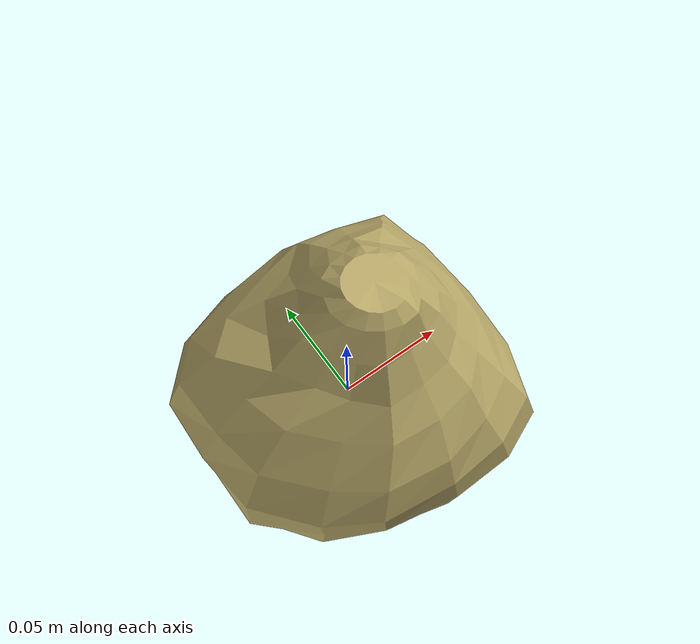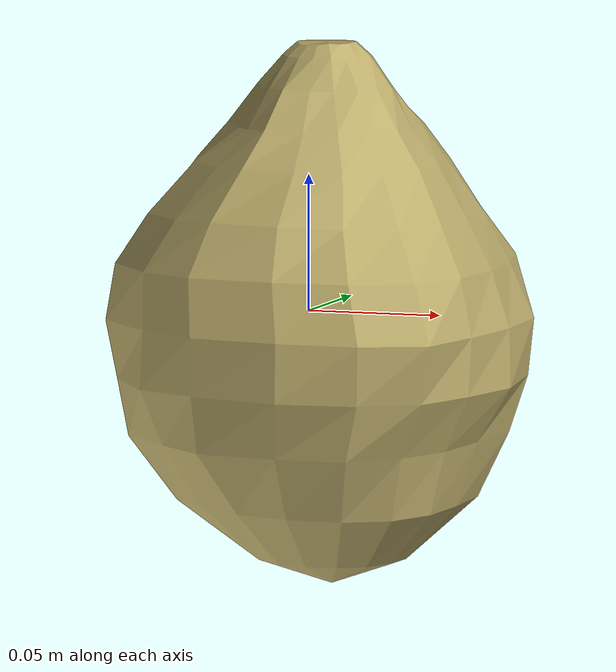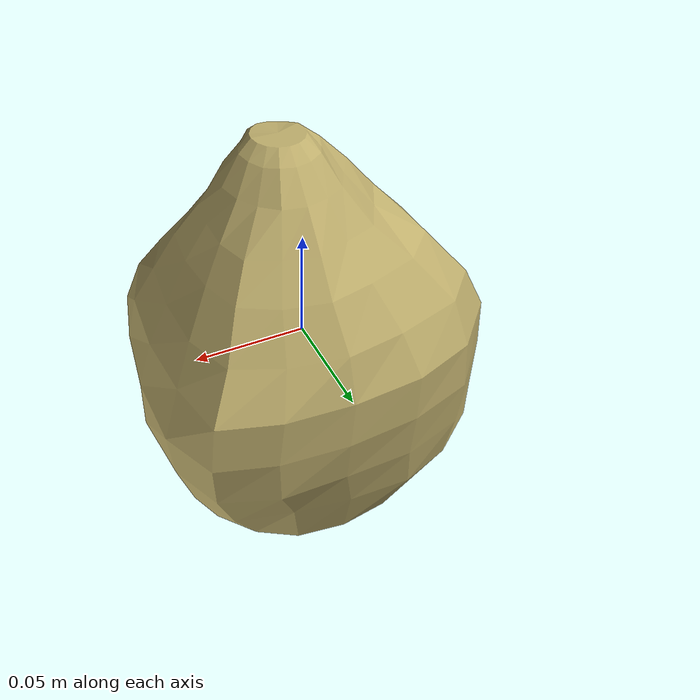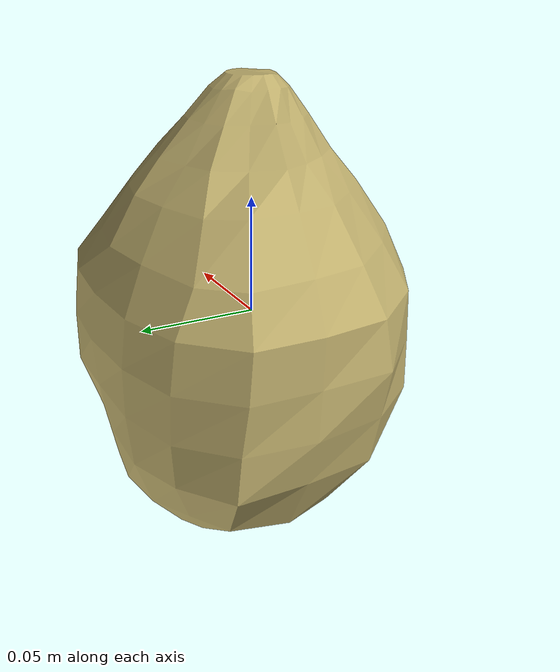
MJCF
<mujoco model="Lettuce_24">
  <compiler autolimits="true" boundmass="0.01" angle="radian"/>
  <default>
    <default class="/">
      <default class="__VISUAL_MJT__">
        <geom contype="0" conaffinity="0" group="0"/>
      </default>
      <default class="__STRUCTURAL_MJT__">
        <geom contype="8" conaffinity="15" group="4" friction="0.90000000000000002 0.90000000000000002 0.001" solref="0.025000000000000001 1" solimp="0.998 0.998 0.001"/>
      </default>
      <default class="__DYNAMIC_MJT__">
        <geom contype="1" conaffinity="15" group="4" friction="0.90000000000000002 0.90000000000000002 0.001" solref="0.025000000000000001 1" solimp="0.998 0.998 0.001"/>
      </default>
    </default>
  </default>
  <asset>
    <texture name="Lettuce3_Mat" type="2d" file="Lettuce3_AlbedoTransparency.png"/>
    <material name="material_Lettuce3_Mat" class="/" texture="Lettuce3_Mat" specular="0.5" shininess="0.5" rgba="1 0.95246359999999997 0.62735850000000004 1"/>
    <mesh name="Lettuce_24_lettuce_c4" class="/" file="Lettuce_24_lettuce_c4/Lettuce_24_lettuce_c4.obj" scale="1 1 1"/>
  </asset>
  <worldbody>
    <body name="Lettuce_24">
      <joint name="Lettuce_24_free" class="/" type="free" pos="0 0 0" axis="0 0 1" stiffness="0" range="0 0" armature="0" damping="0.10000000000000001" frictionloss="0"/>
      <body name="Lettuce_24_lettuce_c4" pos="0.00198 -0.00215 -0.0020500000000000002" quat="1 0 0 0">
        <geom name="Lettuce_24_lettuce_c4" class="__VISUAL_MJT__" type="mesh" material="material_Lettuce3_Mat" shellinertia="true" mesh="Lettuce_24_lettuce_c4"/>
        <geom name="Lettuce_24_PrimitiveCollider_0" class="__DYNAMIC_MJT__" type="capsule" size="0.075349807739257812 0.013187482953071594" rgba="0 1 0 1" pos="0.001978031825274229 0.0021507879719138145 -0.012020684778690338" quat="0.99999999999891198 1.4751396607739272e-06 0 0"/>
        <geom name="Lettuce_24_PrimitiveCollider_1" class="__DYNAMIC_MJT__" type="capsule" size="0.033754114061594009 1.0000000000000001e-05" rgba="0 1 0 1" pos="0.0055374763906002045 0.0020487681031227112 0.070902585983276367" quat="0.99999999999891198 1.4751396607739272e-06 0 0"/>
      </body>
    </body>
  </worldbody>
</mujoco>
